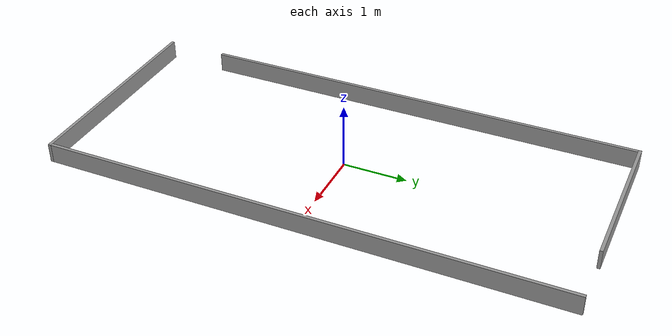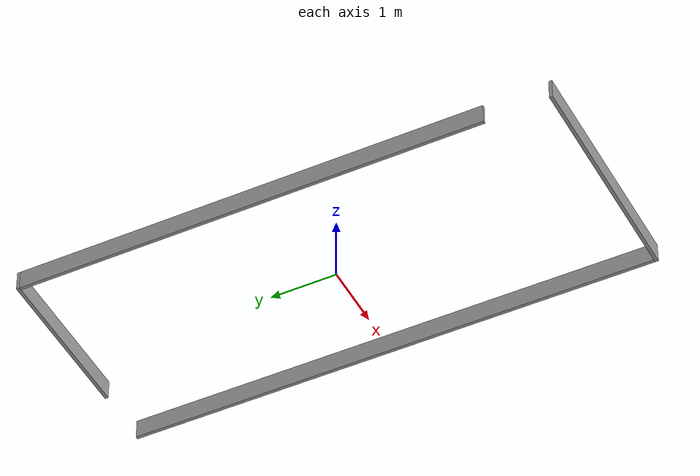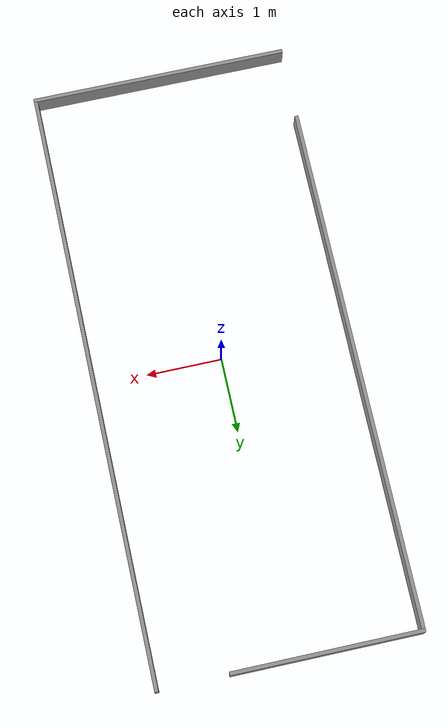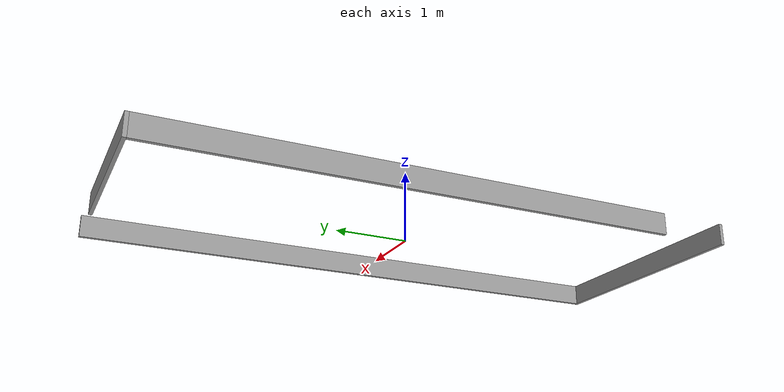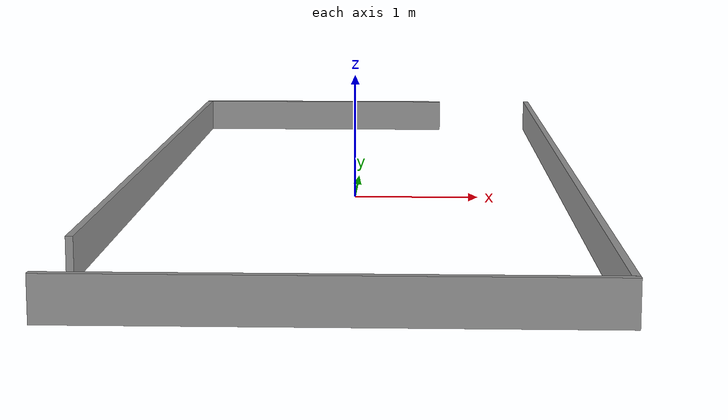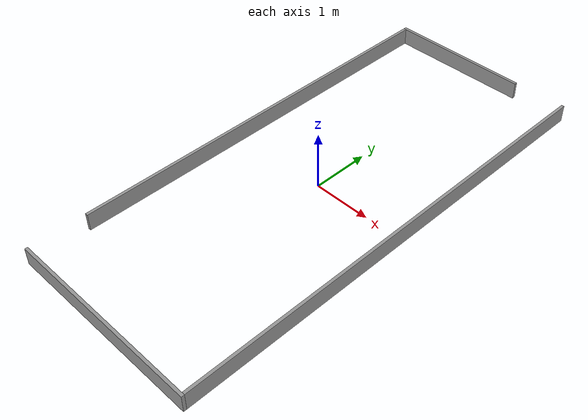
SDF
<?xml version='1.0'?>
<sdf version='1.7'>
  <model name='wall'>
    <link name='link'>
      <inertial>
        <mass>1</mass>
        <inertia>
          <ixx>0.166667</ixx>
          <ixy>0</ixy>
          <ixz>0</ixz>
          <iyy>0.166667</iyy>
          <iyz>0</iyz>
          <izz>0.166667</izz>
        </inertia>
        <pose>0 0 0 0 -0 0</pose>
      </inertial>
      <self_collide>0</self_collide>
      <enable_wind>0</enable_wind>
      <kinematic>0</kinematic>
      <pose>-1.7 0.475 0.15 0 -0 0</pose>
      <gravity>0</gravity>
      <visual name='visual'>
        <geometry>
          <box>
            <size>0.05 7.01 0.3</size>
          </box>
        </geometry>
        <material>
          <script>
            <name>Gazebo/Grey</name>
            <uri>file://media/materials/scripts/gazebo.material</uri>
          </script>
          <shader type='pixel'>
            <normal_map>__default__</normal_map>
          </shader>
          <ambient>1 1 1 1</ambient>
          <diffuse>0.7 0.7 0.7 1</diffuse>
          <specular>0.01 0.01 0.01 1</specular>
          <emissive>0 0 0 1</emissive>
        </material>
        <pose>0 0 0 0 -0 0</pose>
        <transparency>0</transparency>
        <cast_shadows>1</cast_shadows>
      </visual>
    </link>
    <link name='link_clone'>
      <inertial>
        <mass>1</mass>
        <inertia>
          <ixx>0.166667</ixx>
          <ixy>0</ixy>
          <ixz>0</ixz>
          <iyy>0.166667</iyy>
          <iyz>0</iyz>
          <izz>0.166667</izz>
        </inertia>
        <pose>0 0 0 0 -0 0</pose>
      </inertial>
      <self_collide>0</self_collide>
      <enable_wind>0</enable_wind>
      <kinematic>0</kinematic>
      <pose>-0.475 4.005 0.15 -1e-05 -0 0</pose>
      <gravity>0</gravity>
      <visual name='visual'>
        <geometry>
          <box>
            <size>2.5 0.05 0.3</size>
          </box>
        </geometry>
        <material>
          <script>
            <name>Gazebo/Grey</name>
            <uri>file://media/materials/scripts/gazebo.material</uri>
          </script>
          <shader type='pixel'>
            <normal_map>__default__</normal_map>
          </shader>
          <ambient>1 1 1 1</ambient>
          <diffuse>0.7 0.7 0.7 1</diffuse>
          <specular>0.01 0.01 0.01 1</specular>
          <emissive>0 0 0 1</emissive>
        </material>
        <pose>0 0 0 0 -0 0</pose>
        <transparency>0</transparency>
        <cast_shadows>1</cast_shadows>
      </visual>
    </link>
    <link name='link_clone_0'>
      <inertial>
        <mass>1</mass>
        <inertia>
          <ixx>0.166667</ixx>
          <ixy>0</ixy>
          <ixz>0</ixz>
          <iyy>0.166667</iyy>
          <iyz>0</iyz>
          <izz>0.166667</izz>
        </inertia>
        <pose>0 0 0 0 -0 0</pose>
      </inertial>
      <self_collide>0</self_collide>
      <enable_wind>0</enable_wind>
      <kinematic>0</kinematic>
      <pose>1.7 0.025 0.15 -1e-05 -0 0</pose>
      <gravity>0</gravity>
      <visual name='visual'>
        <geometry>
          <box>
            <size>0.05 8.01 0.3</size>
          </box>
        </geometry>
        <material>
          <script>
            <name>Gazebo/Grey</name>
            <uri>file://media/materials/scripts/gazebo.material</uri>
          </script>
          <shader type='pixel'>
            <normal_map>__default__</normal_map>
          </shader>
          <ambient>1 1 1 1</ambient>
          <diffuse>0.7 0.7 0.7 1</diffuse>
          <specular>0.01 0.01 0.01 1</specular>
          <emissive>0 0 0 1</emissive>
        </material>
        <pose>0 0 0 0 -0 0</pose>
        <transparency>0</transparency>
        <cast_shadows>1</cast_shadows>
      </visual>
    </link>
    <link name='link_clone_clone'>
      <inertial>
        <mass>1</mass>
        <inertia>
          <ixx>0.166667</ixx>
          <ixy>0</ixy>
          <ixz>0</ixz>
          <iyy>0.166667</iyy>
          <iyz>0</iyz>
          <izz>0.166667</izz>
        </inertia>
        <pose>0 0 0 0 -0 0</pose>
      </inertial>
      <self_collide>0</self_collide>
      <enable_wind>0</enable_wind>
      <kinematic>0</kinematic>
      <pose>-0 -4.005 0.15 -2e-05 0 0</pose>
      <gravity>0</gravity>
      <visual name='visual'>
        <geometry>
          <box>
            <size>3.45 0.05 0.3</size>
          </box>
        </geometry>
        <material>
          <script>
            <name>Gazebo/Grey</name>
            <uri>file://media/materials/scripts/gazebo.material</uri>
          </script>
          <shader type='pixel'>
            <normal_map>__default__</normal_map>
          </shader>
          <ambient>1 1 1 1</ambient>
          <diffuse>0.7 0.7 0.7 1</diffuse>
          <specular>0.01 0.01 0.01 1</specular>
          <emissive>0 0 0 1</emissive>
        </material>
        <pose>0 0 0 0 -0 0</pose>
        <transparency>0</transparency>
        <cast_shadows>1</cast_shadows>
      </visual>
    </link>
    <static>0</static>
    <allow_auto_disable>1</allow_auto_disable>
  </model>
</sdf>
